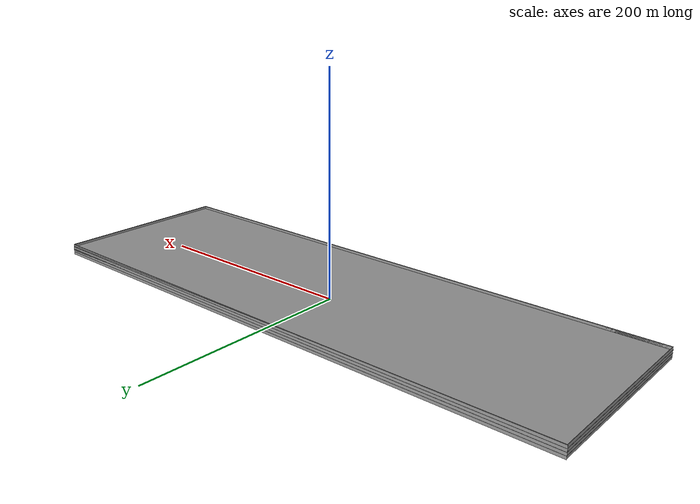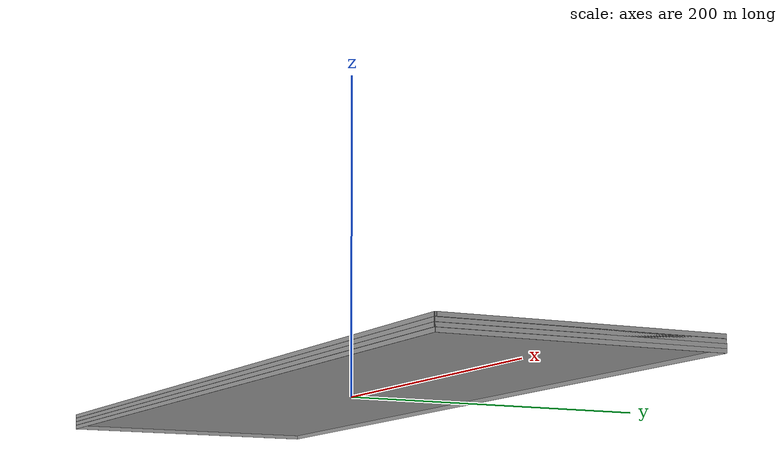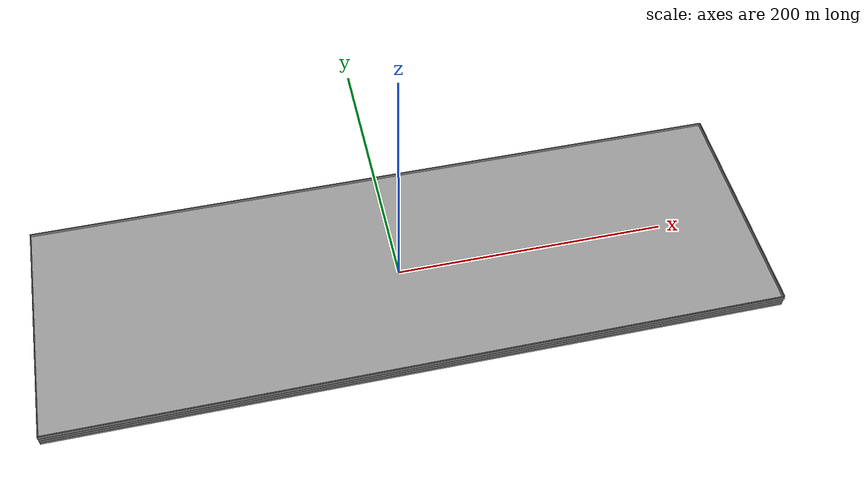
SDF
<?xml version='1.0'?>
<sdf version='1.6'>
  <model name='four_floor'>
    <pose frame=''>0.78746 -0.581123 0 0 -0 0</pose>
    <link name='Floor_0'>
      <collision name='Floor_0_Collision'>
        <geometry>
          <box>
            <size>524.25 169.5 0.1</size>
          </box>
        </geometry>
        <pose frame=''>0 0 0.05 0 -0 0</pose>
      </collision>
      <visual name='Floor_0_Visual'>
        <pose frame=''>0 0 0.05 0 -0 0</pose>
        <geometry>
          <box>
            <size>524.25 169.5 0.1</size>
          </box>
        </geometry>
        <material>
          <script>
            <uri>file://media/materials/scripts/gazebo.material</uri>
            <name>Gazebo/Grey</name>
          </script>
          <ambient>1 1 1 1</ambient>
        </material>
        <meta>
          <layer>1</layer>
        </meta>
      </visual>
      <pose frame=''>-0.250009 -2e-06 2.5 0 -0 0</pose>
    </link>
    <link name='Floor_1'>
      <collision name='Floor_1_Collision'>
        <geometry>
          <box>
            <size>524.25 169.5 0.1</size>
          </box>
        </geometry>
        <pose frame=''>0 0 0.05 0 -0 0</pose>
      </collision>
      <visual name='Floor_1_Visual'>
        <pose frame=''>0 0 0.05 0 -0 0</pose>
        <geometry>
          <box>
            <size>524.25 169.5 0.1</size>
          </box>
        </geometry>
        <material>
          <script>
            <uri>file://media/materials/scripts/gazebo.material</uri>
            <name>Gazebo/Grey</name>
          </script>
          <ambient>1 1 1 1</ambient>
        </material>
        <meta>
          <layer>2</layer>
        </meta>
      </visual>
      <pose frame=''>-0.250009 -2e-06 5 0 -0 0</pose>
    </link>
    <link name='Floor_2'>
      <collision name='Floor_2_Collision'>
        <geometry>
          <box>
            <size>524.75 169.5 0.1</size>
          </box>
        </geometry>
        <pose frame=''>0 0 0.05 0 -0 0</pose>
      </collision>
      <visual name='Floor_2_Visual'>
        <pose frame=''>0 0 0.05 0 -0 0</pose>
        <geometry>
          <box>
            <size>524.75 169.5 0.1</size>
          </box>
        </geometry>
        <material>
          <script>
            <uri>file://media/materials/scripts/gazebo.material</uri>
            <name>Gazebo/Grey</name>
          </script>
          <ambient>1 1 1 1</ambient>
        </material>
        <meta>
          <layer>3</layer>
        </meta>
      </visual>
      <pose frame=''>-9e-06 -2e-06 7.5 0 -0 0</pose>
    </link>
    <link name='Wall_0'>
      <collision name='Wall_0_Collision'>
        <geometry>
          <box>
            <size>524.25 0.15 2.5</size>
          </box>
        </geometry>
        <pose frame=''>0 0 1.25 0 -0 0</pose>
      </collision>
      <visual name='Wall_0_Visual'>
        <pose frame=''>0 0 1.25 0 -0 0</pose>
        <geometry>
          <box>
            <size>524.25 0.15 2.5</size>
          </box>
        </geometry>
        <material>
          <script>
            <uri>file://media/materials/scripts/gazebo.material</uri>
            <name>Gazebo/Grey</name>
          </script>
          <ambient>1 1 1 1</ambient>
        </material>
        <meta>
          <layer>0</layer>
        </meta>
      </visual>
      <pose frame=''>-0.250009 84.675 0 0 -0 0</pose>
    </link>
    <link name='Wall_1'>
      <collision name='Wall_1_Collision'>
        <geometry>
          <box>
            <size>169.25 0.15 2.5</size>
          </box>
        </geometry>
        <pose frame=''>0 0 1.25 0 -0 0</pose>
      </collision>
      <visual name='Wall_1_Visual'>
        <pose frame=''>0 0 1.25 0 -0 0</pose>
        <geometry>
          <box>
            <size>169.25 0.15 2.5</size>
          </box>
        </geometry>
        <material>
          <script>
            <uri>file://media/materials/scripts/gazebo.material</uri>
            <name>Gazebo/Grey</name>
          </script>
          <ambient>1 1 1 1</ambient>
        </material>
        <meta>
          <layer>0</layer>
        </meta>
      </visual>
      <pose frame=''>261.8 0.125016 0 0 -0 -1.5708</pose>
    </link>
    <link name='Wall_10'>
      <collision name='Wall_10_Collision'>
        <geometry>
          <box>
            <size>169.5 0.15 2.5</size>
          </box>
        </geometry>
        <pose frame=''>0 0 1.25 0 -0 0</pose>
      </collision>
      <visual name='Wall_10_Visual'>
        <pose frame=''>0 0 1.25 0 -0 0</pose>
        <geometry>
          <box>
            <size>169.5 0.15 2.5</size>
          </box>
        </geometry>
        <material>
          <script>
            <uri>file://media/materials/scripts/gazebo.material</uri>
            <name>Gazebo/Grey</name>
          </script>
          <ambient>1 1 1 1</ambient>
        </material>
        <meta>
          <layer>1</layer>
        </meta>
      </visual>
      <pose frame=''>261.375 1.6e-05 2.5 0 -0 -1.5708</pose>
    </link>
    <link name='Wall_11'>
      <collision name='Wall_11_Collision'>
        <geometry>
          <box>
            <size>523.576 0.15 2.5</size>
          </box>
        </geometry>
        <pose frame=''>0 0 1.25 0 -0 0</pose>
      </collision>
      <visual name='Wall_11_Visual'>
        <pose frame=''>0 0 1.25 0 -0 0</pose>
        <geometry>
          <box>
            <size>523.576 0.15 2.5</size>
          </box>
        </geometry>
        <material>
          <script>
            <uri>file://media/materials/scripts/gazebo.material</uri>
            <name>Gazebo/Grey</name>
          </script>
          <ambient>1 1 1 1</ambient>
        </material>
        <meta>
          <layer>1</layer>
        </meta>
      </visual>
      <pose frame=''>-0.337267 -84.55 2.5 0 -0 3.14112</pose>
    </link>
    <link name='Wall_12'>
      <collision name='Wall_12_Collision'>
        <geometry>
          <box>
            <size>169 0.15 2.5</size>
          </box>
        </geometry>
        <pose frame=''>0 0 1.25 0 -0 0</pose>
      </collision>
      <visual name='Wall_12_Visual'>
        <pose frame=''>0 0 1.25 0 -0 0</pose>
        <geometry>
          <box>
            <size>169 0.15 2.5</size>
          </box>
        </geometry>
        <material>
          <script>
            <uri>file://media/materials/scripts/gazebo.material</uri>
            <name>Gazebo/Grey</name>
          </script>
          <ambient>1 1 1 1</ambient>
        </material>
        <meta>
          <layer>1</layer>
        </meta>
      </visual>
      <pose frame=''>-262.05 1.6e-05 2.5 0 -0 1.5708</pose>
    </link>
    <link name='Wall_14'>
      <collision name='Wall_14_Collision'>
        <geometry>
          <box>
            <size>524.25 0.15 2.5</size>
          </box>
        </geometry>
        <pose frame=''>0 0 1.25 0 -0 0</pose>
      </collision>
      <visual name='Wall_14_Visual'>
        <pose frame=''>0 0 1.25 0 -0 0</pose>
        <geometry>
          <box>
            <size>524.25 0.15 2.5</size>
          </box>
        </geometry>
        <material>
          <script>
            <uri>file://media/materials/scripts/gazebo.material</uri>
            <name>Gazebo/Grey</name>
          </script>
          <ambient>1 1 1 1</ambient>
        </material>
        <meta>
          <layer>2</layer>
        </meta>
      </visual>
      <pose frame=''>-0.250009 84.675 5 0 -0 0</pose>
    </link>
    <link name='Wall_15'>
      <collision name='Wall_15_Collision'>
        <geometry>
          <box>
            <size>169.25 0.15 2.5</size>
          </box>
        </geometry>
        <pose frame=''>0 0 1.25 0 -0 0</pose>
      </collision>
      <visual name='Wall_15_Visual'>
        <pose frame=''>0 0 1.25 0 -0 0</pose>
        <geometry>
          <box>
            <size>169.25 0.15 2.5</size>
          </box>
        </geometry>
        <material>
          <script>
            <uri>file://media/materials/scripts/gazebo.material</uri>
            <name>Gazebo/Grey</name>
          </script>
          <ambient>1 1 1 1</ambient>
        </material>
        <meta>
          <layer>2</layer>
        </meta>
      </visual>
      <pose frame=''>261.8 0.125016 5 0 -0 -1.5708</pose>
    </link>
    <link name='Wall_16'>
      <collision name='Wall_16_Collision'>
        <geometry>
          <box>
            <size>524 0.15 2.5</size>
          </box>
        </geometry>
        <pose frame=''>0 0 1.25 0 -0 0</pose>
      </collision>
      <visual name='Wall_16_Visual'>
        <pose frame=''>0 0 1.25 0 -0 0</pose>
        <geometry>
          <box>
            <size>524 0.15 2.5</size>
          </box>
        </geometry>
        <material>
          <script>
            <uri>file://media/materials/scripts/gazebo.material</uri>
            <name>Gazebo/Grey</name>
          </script>
          <ambient>1 1 1 1</ambient>
        </material>
        <meta>
          <layer>2</layer>
        </meta>
      </visual>
      <pose frame=''>-0.125009 -84.425 5 0 -0 3.14159</pose>
    </link>
    <link name='Wall_17'>
      <collision name='Wall_17_Collision'>
        <geometry>
          <box>
            <size>169 0.15 2.5</size>
          </box>
        </geometry>
        <pose frame=''>0 0 1.25 0 -0 0</pose>
      </collision>
      <visual name='Wall_17_Visual'>
        <pose frame=''>0 0 1.25 0 -0 0</pose>
        <geometry>
          <box>
            <size>169 0.15 2.5</size>
          </box>
        </geometry>
        <material>
          <script>
            <uri>file://media/materials/scripts/gazebo.material</uri>
            <name>Gazebo/Grey</name>
          </script>
          <ambient>1 1 1 1</ambient>
        </material>
        <meta>
          <layer>2</layer>
        </meta>
      </visual>
      <pose frame=''>-262.05 1.6e-05 5 0 -0 1.5708</pose>
    </link>
    <link name='Wall_18'>
      <collision name='Wall_18_Collision'>
        <geometry>
          <box>
            <size>523.5 0.15 2.5</size>
          </box>
        </geometry>
        <pose frame=''>0 0 1.25 0 -0 0</pose>
      </collision>
      <visual name='Wall_18_Visual'>
        <pose frame=''>0 0 1.25 0 -0 0</pose>
        <geometry>
          <box>
            <size>523.5 0.15 2.5</size>
          </box>
        </geometry>
        <material>
          <script>
            <uri>file://media/materials/scripts/gazebo.material</uri>
            <name>Gazebo/Grey</name>
          </script>
          <ambient>1 1 1 1</ambient>
        </material>
        <meta>
          <layer>2</layer>
        </meta>
      </visual>
      <pose frame=''>-0.299526 84.675 5 0 -0 0</pose>
    </link>
    <link name='Wall_19'>
      <collision name='Wall_19_Collision'>
        <geometry>
          <box>
            <size>169.5 0.15 2.5</size>
          </box>
        </geometry>
        <pose frame=''>0 0 1.25 0 -0 0</pose>
      </collision>
      <visual name='Wall_19_Visual'>
        <pose frame=''>0 0 1.25 0 -0 0</pose>
        <geometry>
          <box>
            <size>169.5 0.15 2.5</size>
          </box>
        </geometry>
        <material>
          <script>
            <uri>file://media/materials/scripts/gazebo.material</uri>
            <name>Gazebo/Grey</name>
          </script>
          <ambient>1 1 1 1</ambient>
        </material>
        <meta>
          <layer>2</layer>
        </meta>
      </visual>
      <pose frame=''>261.375 1.6e-05 5 0 -0 -1.5708</pose>
    </link>
    <link name='Wall_2'>
      <collision name='Wall_2_Collision'>
        <geometry>
          <box>
            <size>524 0.15 2.5</size>
          </box>
        </geometry>
        <pose frame=''>0 0 1.25 0 -0 0</pose>
      </collision>
      <visual name='Wall_2_Visual'>
        <pose frame=''>0 0 1.25 0 -0 0</pose>
        <geometry>
          <box>
            <size>524 0.15 2.5</size>
          </box>
        </geometry>
        <material>
          <script>
            <uri>file://media/materials/scripts/gazebo.material</uri>
            <name>Gazebo/Grey</name>
          </script>
          <ambient>1 1 1 1</ambient>
        </material>
        <meta>
          <layer>0</layer>
        </meta>
      </visual>
      <pose frame=''>-0.125009 -84.425 0 0 -0 3.14159</pose>
    </link>
    <link name='Wall_20'>
      <collision name='Wall_20_Collision'>
        <geometry>
          <box>
            <size>523.576 0.15 2.5</size>
          </box>
        </geometry>
        <pose frame=''>0 0 1.25 0 -0 0</pose>
      </collision>
      <visual name='Wall_20_Visual'>
        <pose frame=''>0 0 1.25 0 -0 0</pose>
        <geometry>
          <box>
            <size>523.576 0.15 2.5</size>
          </box>
        </geometry>
        <material>
          <script>
            <uri>file://media/materials/scripts/gazebo.material</uri>
            <name>Gazebo/Grey</name>
          </script>
          <ambient>1 1 1 1</ambient>
        </material>
        <meta>
          <layer>2</layer>
        </meta>
      </visual>
      <pose frame=''>-0.337267 -84.55 5 0 -0 3.14112</pose>
    </link>
    <link name='Wall_21'>
      <collision name='Wall_21_Collision'>
        <geometry>
          <box>
            <size>169 0.15 2.5</size>
          </box>
        </geometry>
        <pose frame=''>0 0 1.25 0 -0 0</pose>
      </collision>
      <visual name='Wall_21_Visual'>
        <pose frame=''>0 0 1.25 0 -0 0</pose>
        <geometry>
          <box>
            <size>169 0.15 2.5</size>
          </box>
        </geometry>
        <material>
          <script>
            <uri>file://media/materials/scripts/gazebo.material</uri>
            <name>Gazebo/Grey</name>
          </script>
          <ambient>1 1 1 1</ambient>
        </material>
        <meta>
          <layer>2</layer>
        </meta>
      </visual>
      <pose frame=''>-262.05 1.6e-05 5 0 -0 1.5708</pose>
    </link>
    <link name='Wall_22'>
      <collision name='Wall_22_Collision'>
        <geometry>
          <box>
            <size>524 0.15 2.5</size>
          </box>
        </geometry>
        <pose frame=''>0 0 1.25 0 -0 0</pose>
      </collision>
      <visual name='Wall_22_Visual'>
        <pose frame=''>0 0 1.25 0 -0 0</pose>
        <geometry>
          <box>
            <size>524 0.15 2.5</size>
          </box>
        </geometry>
        <material>
          <script>
            <uri>file://media/materials/scripts/gazebo.material</uri>
            <name>Gazebo/Grey</name>
          </script>
          <ambient>1 1 1 1</ambient>
        </material>
        <meta>
          <layer>2</layer>
        </meta>
      </visual>
      <pose frame=''>-0.125009 84.425 5 0 -0 0</pose>
    </link>
    <link name='Wall_23'>
      <collision name='Wall_23_Collision'>
        <geometry>
          <box>
            <size>168.25 0.15 2.5</size>
          </box>
        </geometry>
        <pose frame=''>0 0 1.25 0 -0 0</pose>
      </collision>
      <visual name='Wall_23_Visual'>
        <pose frame=''>0 0 1.25 0 -0 0</pose>
        <geometry>
          <box>
            <size>168.25 0.15 2.5</size>
          </box>
        </geometry>
        <material>
          <script>
            <uri>file://media/materials/scripts/gazebo.material</uri>
            <name>Gazebo/Grey</name>
          </script>
          <ambient>1 1 1 1</ambient>
        </material>
        <meta>
          <layer>2</layer>
        </meta>
      </visual>
      <pose frame=''>261.8 0.375016 5 0 -0 -1.5708</pose>
    </link>
    <link name='Wall_24'>
      <collision name='Wall_24_Collision'>
        <geometry>
          <box>
            <size>523.75 0.15 2.5</size>
          </box>
        </geometry>
        <pose frame=''>0 0 1.25 0 -0 0</pose>
      </collision>
      <visual name='Wall_24_Visual'>
        <pose frame=''>0 0 1.25 0 -0 0</pose>
        <geometry>
          <box>
            <size>523.75 0.15 2.5</size>
          </box>
        </geometry>
        <material>
          <script>
            <uri>file://media/materials/scripts/gazebo.material</uri>
            <name>Gazebo/Grey</name>
          </script>
          <ambient>1 1 1 1</ambient>
        </material>
        <meta>
          <layer>2</layer>
        </meta>
      </visual>
      <pose frame=''>-9e-06 -83.675 5 0 -0 3.14159</pose>
    </link>
    <link name='Wall_25'>
      <collision name='Wall_25_Collision'>
        <geometry>
          <box>
            <size>168 0.15 2.5</size>
          </box>
        </geometry>
        <pose frame=''>0 0 1.25 0 -0 0</pose>
      </collision>
      <visual name='Wall_25_Visual'>
        <pose frame=''>0 0 1.25 0 -0 0</pose>
        <geometry>
          <box>
            <size>168 0.15 2.5</size>
          </box>
        </geometry>
        <material>
          <script>
            <uri>file://media/materials/scripts/gazebo.material</uri>
            <name>Gazebo/Grey</name>
          </script>
          <ambient>1 1 1 1</ambient>
        </material>
        <meta>
          <layer>2</layer>
        </meta>
      </visual>
      <pose frame=''>-261.8 0.250016 5 0 -0 1.5708</pose>
    </link>
    <link name='Wall_27'>
      <collision name='Wall_27_Collision'>
        <geometry>
          <box>
            <size>524.25 0.15 2.5</size>
          </box>
        </geometry>
        <pose frame=''>0 0 1.25 0 -0 0</pose>
      </collision>
      <visual name='Wall_27_Visual'>
        <pose frame=''>0 0 1.25 0 -0 0</pose>
        <geometry>
          <box>
            <size>524.25 0.15 2.5</size>
          </box>
        </geometry>
        <material>
          <script>
            <uri>file://media/materials/scripts/gazebo.material</uri>
            <name>Gazebo/Grey</name>
          </script>
          <ambient>1 1 1 1</ambient>
        </material>
        <meta>
          <layer>3</layer>
        </meta>
      </visual>
      <pose frame=''>-0.250009 84.675 7.5 0 -0 0</pose>
    </link>
    <link name='Wall_28'>
      <collision name='Wall_28_Collision'>
        <geometry>
          <box>
            <size>169.25 0.15 2.5</size>
          </box>
        </geometry>
        <pose frame=''>0 0 1.25 0 -0 0</pose>
      </collision>
      <visual name='Wall_28_Visual'>
        <pose frame=''>0 0 1.25 0 -0 0</pose>
        <geometry>
          <box>
            <size>169.25 0.15 2.5</size>
          </box>
        </geometry>
        <material>
          <script>
            <uri>file://media/materials/scripts/gazebo.material</uri>
            <name>Gazebo/Grey</name>
          </script>
          <ambient>1 1 1 1</ambient>
        </material>
        <meta>
          <layer>3</layer>
        </meta>
      </visual>
      <pose frame=''>261.8 0.125016 7.5 0 -0 -1.5708</pose>
    </link>
    <link name='Wall_29'>
      <collision name='Wall_29_Collision'>
        <geometry>
          <box>
            <size>524 0.15 2.5</size>
          </box>
        </geometry>
        <pose frame=''>0 0 1.25 0 -0 0</pose>
      </collision>
      <visual name='Wall_29_Visual'>
        <pose frame=''>0 0 1.25 0 -0 0</pose>
        <geometry>
          <box>
            <size>524 0.15 2.5</size>
          </box>
        </geometry>
        <material>
          <script>
            <uri>file://media/materials/scripts/gazebo.material</uri>
            <name>Gazebo/Grey</name>
          </script>
          <ambient>1 1 1 1</ambient>
        </material>
        <meta>
          <layer>3</layer>
        </meta>
      </visual>
      <pose frame=''>-0.125009 -84.425 7.5 0 -0 3.14159</pose>
    </link>
    <link name='Wall_3'>
      <collision name='Wall_3_Collision'>
        <geometry>
          <box>
            <size>169 0.15 2.5</size>
          </box>
        </geometry>
        <pose frame=''>0 0 1.25 0 -0 0</pose>
      </collision>
      <visual name='Wall_3_Visual'>
        <pose frame=''>0 0 1.25 0 -0 0</pose>
        <geometry>
          <box>
            <size>169 0.15 2.5</size>
          </box>
        </geometry>
        <material>
          <script>
            <uri>file://media/materials/scripts/gazebo.material</uri>
            <name>Gazebo/Grey</name>
          </script>
          <ambient>1 1 1 1</ambient>
        </material>
        <meta>
          <layer>0</layer>
        </meta>
      </visual>
      <pose frame=''>-262.05 1.6e-05 0 0 -0 1.5708</pose>
    </link>
    <link name='Wall_30'>
      <collision name='Wall_30_Collision'>
        <geometry>
          <box>
            <size>169 0.15 2.5</size>
          </box>
        </geometry>
        <pose frame=''>0 0 1.25 0 -0 0</pose>
      </collision>
      <visual name='Wall_30_Visual'>
        <pose frame=''>0 0 1.25 0 -0 0</pose>
        <geometry>
          <box>
            <size>169 0.15 2.5</size>
          </box>
        </geometry>
        <material>
          <script>
            <uri>file://media/materials/scripts/gazebo.material</uri>
            <name>Gazebo/Grey</name>
          </script>
          <ambient>1 1 1 1</ambient>
        </material>
        <meta>
          <layer>3</layer>
        </meta>
      </visual>
      <pose frame=''>-262.05 1.6e-05 7.5 0 -0 1.5708</pose>
    </link>
    <link name='Wall_31'>
      <collision name='Wall_31_Collision'>
        <geometry>
          <box>
            <size>523.5 0.15 2.5</size>
          </box>
        </geometry>
        <pose frame=''>0 0 1.25 0 -0 0</pose>
      </collision>
      <visual name='Wall_31_Visual'>
        <pose frame=''>0 0 1.25 0 -0 0</pose>
        <geometry>
          <box>
            <size>523.5 0.15 2.5</size>
          </box>
        </geometry>
        <material>
          <script>
            <uri>file://media/materials/scripts/gazebo.material</uri>
            <name>Gazebo/Grey</name>
          </script>
          <ambient>1 1 1 1</ambient>
        </material>
        <meta>
          <layer>3</layer>
        </meta>
      </visual>
      <pose frame=''>-0.299526 84.675 7.5 0 -0 0</pose>
    </link>
    <link name='Wall_32'>
      <collision name='Wall_32_Collision'>
        <geometry>
          <box>
            <size>169.5 0.15 2.5</size>
          </box>
        </geometry>
        <pose frame=''>0 0 1.25 0 -0 0</pose>
      </collision>
      <visual name='Wall_32_Visual'>
        <pose frame=''>0 0 1.25 0 -0 0</pose>
        <geometry>
          <box>
            <size>169.5 0.15 2.5</size>
          </box>
        </geometry>
        <material>
          <script>
            <uri>file://media/materials/scripts/gazebo.material</uri>
            <name>Gazebo/Grey</name>
          </script>
          <ambient>1 1 1 1</ambient>
        </material>
        <meta>
          <layer>3</layer>
        </meta>
      </visual>
      <pose frame=''>261.375 1.6e-05 7.5 0 -0 -1.5708</pose>
    </link>
    <link name='Wall_33'>
      <collision name='Wall_33_Collision'>
        <geometry>
          <box>
            <size>523.576 0.15 2.5</size>
          </box>
        </geometry>
        <pose frame=''>0 0 1.25 0 -0 0</pose>
      </collision>
      <visual name='Wall_33_Visual'>
        <pose frame=''>0 0 1.25 0 -0 0</pose>
        <geometry>
          <box>
            <size>523.576 0.15 2.5</size>
          </box>
        </geometry>
        <material>
          <script>
            <uri>file://media/materials/scripts/gazebo.material</uri>
            <name>Gazebo/Grey</name>
          </script>
          <ambient>1 1 1 1</ambient>
        </material>
        <meta>
          <layer>3</layer>
        </meta>
      </visual>
      <pose frame=''>-0.337267 -84.55 7.5 0 -0 3.14112</pose>
    </link>
    <link name='Wall_34'>
      <collision name='Wall_34_Collision'>
        <geometry>
          <box>
            <size>169 0.15 2.5</size>
          </box>
        </geometry>
        <pose frame=''>0 0 1.25 0 -0 0</pose>
      </collision>
      <visual name='Wall_34_Visual'>
        <pose frame=''>0 0 1.25 0 -0 0</pose>
        <geometry>
          <box>
            <size>169 0.15 2.5</size>
          </box>
        </geometry>
        <material>
          <script>
            <uri>file://media/materials/scripts/gazebo.material</uri>
            <name>Gazebo/Grey</name>
          </script>
          <ambient>1 1 1 1</ambient>
        </material>
        <meta>
          <layer>3</layer>
        </meta>
      </visual>
      <pose frame=''>-262.05 1.6e-05 7.5 0 -0 1.5708</pose>
    </link>
    <link name='Wall_35'>
      <collision name='Wall_35_Collision'>
        <geometry>
          <box>
            <size>524 0.15 2.5</size>
          </box>
        </geometry>
        <pose frame=''>0 0 1.25 0 -0 0</pose>
      </collision>
      <visual name='Wall_35_Visual'>
        <pose frame=''>0 0 1.25 0 -0 0</pose>
        <geometry>
          <box>
            <size>524 0.15 2.5</size>
          </box>
        </geometry>
        <material>
          <script>
            <uri>file://media/materials/scripts/gazebo.material</uri>
            <name>Gazebo/Grey</name>
          </script>
          <ambient>1 1 1 1</ambient>
        </material>
        <meta>
          <layer>3</layer>
        </meta>
      </visual>
      <pose frame=''>-0.125009 84.425 7.5 0 -0 0</pose>
    </link>
    <link name='Wall_36'>
      <collision name='Wall_36_Collision'>
        <geometry>
          <box>
            <size>168.25 0.15 2.5</size>
          </box>
        </geometry>
        <pose frame=''>0 0 1.25 0 -0 0</pose>
      </collision>
      <visual name='Wall_36_Visual'>
        <pose frame=''>0 0 1.25 0 -0 0</pose>
        <geometry>
          <box>
            <size>168.25 0.15 2.5</size>
          </box>
        </geometry>
        <material>
          <script>
            <uri>file://media/materials/scripts/gazebo.material</uri>
            <name>Gazebo/Grey</name>
          </script>
          <ambient>1 1 1 1</ambient>
        </material>
        <meta>
          <layer>3</layer>
        </meta>
      </visual>
      <pose frame=''>261.8 0.375016 7.5 0 -0 -1.5708</pose>
    </link>
    <link name='Wall_37'>
      <collision name='Wall_37_Collision'>
        <geometry>
          <box>
            <size>523.75 0.15 2.5</size>
          </box>
        </geometry>
        <pose frame=''>0 0 1.25 0 -0 0</pose>
      </collision>
      <visual name='Wall_37_Visual'>
        <pose frame=''>0 0 1.25 0 -0 0</pose>
        <geometry>
          <box>
            <size>523.75 0.15 2.5</size>
          </box>
        </geometry>
        <material>
          <script>
            <uri>file://media/materials/scripts/gazebo.material</uri>
            <name>Gazebo/Grey</name>
          </script>
          <ambient>1 1 1 1</ambient>
        </material>
        <meta>
          <layer>3</layer>
        </meta>
      </visual>
      <pose frame=''>-9e-06 -83.675 7.5 0 -0 3.14159</pose>
    </link>
    <link name='Wall_38'>
      <collision name='Wall_38_Collision'>
        <geometry>
          <box>
            <size>168 0.15 2.5</size>
          </box>
        </geometry>
        <pose frame=''>0 0 1.25 0 -0 0</pose>
      </collision>
      <visual name='Wall_38_Visual'>
        <pose frame=''>0 0 1.25 0 -0 0</pose>
        <geometry>
          <box>
            <size>168 0.15 2.5</size>
          </box>
        </geometry>
        <material>
          <script>
            <uri>file://media/materials/scripts/gazebo.material</uri>
            <name>Gazebo/Grey</name>
          </script>
          <ambient>1 1 1 1</ambient>
        </material>
        <meta>
          <layer>3</layer>
        </meta>
      </visual>
      <pose frame=''>-261.8 0.250016 7.5 0 -0 1.5708</pose>
    </link>
    <link name='Wall_39'>
      <collision name='Wall_39_Collision'>
        <geometry>
          <box>
            <size>524.25 0.15 2.5</size>
          </box>
        </geometry>
        <pose frame=''>0 0 1.25 0 -0 0</pose>
      </collision>
      <visual name='Wall_39_Visual'>
        <pose frame=''>0 0 1.25 0 -0 0</pose>
        <geometry>
          <box>
            <size>524.25 0.15 2.5</size>
          </box>
        </geometry>
        <material>
          <script>
            <uri>file://media/materials/scripts/gazebo.material</uri>
            <name>Gazebo/Grey</name>
          </script>
          <ambient>1 1 1 1</ambient>
        </material>
        <meta>
          <layer>3</layer>
        </meta>
      </visual>
      <pose frame=''>0.249991 84.175 7.5 0 -0 0</pose>
    </link>
    <link name='Wall_40'>
      <collision name='Wall_40_Collision'>
        <geometry>
          <box>
            <size>168 0.15 2.5</size>
          </box>
        </geometry>
        <pose frame=''>0 0 1.25 0 -0 0</pose>
      </collision>
      <visual name='Wall_40_Visual'>
        <pose frame=''>0 0 1.25 0 -0 0</pose>
        <geometry>
          <box>
            <size>168 0.15 2.5</size>
          </box>
        </geometry>
        <material>
          <script>
            <uri>file://media/materials/scripts/gazebo.material</uri>
            <name>Gazebo/Grey</name>
          </script>
          <ambient>1 1 1 1</ambient>
        </material>
        <meta>
          <layer>3</layer>
        </meta>
      </visual>
      <pose frame=''>262.3 0.250016 7.5 0 -0 -1.5708</pose>
    </link>
    <link name='Wall_41'>
      <collision name='Wall_41_Collision'>
        <geometry>
          <box>
            <size>524.25 0.15 2.5</size>
          </box>
        </geometry>
        <pose frame=''>0 0 1.25 0 -0 0</pose>
      </collision>
      <visual name='Wall_41_Visual'>
        <pose frame=''>0 0 1.25 0 -0 0</pose>
        <geometry>
          <box>
            <size>524.25 0.15 2.5</size>
          </box>
        </geometry>
        <material>
          <script>
            <uri>file://media/materials/scripts/gazebo.material</uri>
            <name>Gazebo/Grey</name>
          </script>
          <ambient>1 1 1 1</ambient>
        </material>
        <meta>
          <layer>3</layer>
        </meta>
      </visual>
      <pose frame=''>0.249991 -83.675 7.5 0 -0 3.14159</pose>
    </link>
    <link name='Wall_42'>
      <collision name='Wall_42_Collision'>
        <geometry>
          <box>
            <size>168 0.15 2.5</size>
          </box>
        </geometry>
        <pose frame=''>0 0 1.25 0 -0 0</pose>
      </collision>
      <visual name='Wall_42_Visual'>
        <pose frame=''>0 0 1.25 0 -0 0</pose>
        <geometry>
          <box>
            <size>168 0.15 2.5</size>
          </box>
        </geometry>
        <material>
          <script>
            <uri>file://media/materials/scripts/gazebo.material</uri>
            <name>Gazebo/Grey</name>
          </script>
          <ambient>1 1 1 1</ambient>
        </material>
        <meta>
          <layer>3</layer>
        </meta>
      </visual>
      <pose frame=''>-261.8 0.250016 7.5 0 -0 1.5708</pose>
    </link>
    <link name='Wall_5'>
      <collision name='Wall_5_Collision'>
        <geometry>
          <box>
            <size>524.25 0.15 2.5</size>
          </box>
        </geometry>
        <pose frame=''>0 0 1.25 0 -0 0</pose>
      </collision>
      <visual name='Wall_5_Visual'>
        <pose frame=''>0 0 1.25 0 -0 0</pose>
        <geometry>
          <box>
            <size>524.25 0.15 2.5</size>
          </box>
        </geometry>
        <material>
          <script>
            <uri>file://media/materials/scripts/gazebo.material</uri>
            <name>Gazebo/Grey</name>
          </script>
          <ambient>1 1 1 1</ambient>
        </material>
        <meta>
          <layer>1</layer>
        </meta>
      </visual>
      <pose frame=''>-0.250009 84.675 2.5 0 -0 0</pose>
    </link>
    <link name='Wall_6'>
      <collision name='Wall_6_Collision'>
        <geometry>
          <box>
            <size>169.25 0.15 2.5</size>
          </box>
        </geometry>
        <pose frame=''>0 0 1.25 0 -0 0</pose>
      </collision>
      <visual name='Wall_6_Visual'>
        <pose frame=''>0 0 1.25 0 -0 0</pose>
        <geometry>
          <box>
            <size>169.25 0.15 2.5</size>
          </box>
        </geometry>
        <material>
          <script>
            <uri>file://media/materials/scripts/gazebo.material</uri>
            <name>Gazebo/Grey</name>
          </script>
          <ambient>1 1 1 1</ambient>
        </material>
        <meta>
          <layer>1</layer>
        </meta>
      </visual>
      <pose frame=''>261.8 0.125016 2.5 0 -0 -1.5708</pose>
    </link>
    <link name='Wall_7'>
      <collision name='Wall_7_Collision'>
        <geometry>
          <box>
            <size>524 0.15 2.5</size>
          </box>
        </geometry>
        <pose frame=''>0 0 1.25 0 -0 0</pose>
      </collision>
      <visual name='Wall_7_Visual'>
        <pose frame=''>0 0 1.25 0 -0 0</pose>
        <geometry>
          <box>
            <size>524 0.15 2.5</size>
          </box>
        </geometry>
        <material>
          <script>
            <uri>file://media/materials/scripts/gazebo.material</uri>
            <name>Gazebo/Grey</name>
          </script>
          <ambient>1 1 1 1</ambient>
        </material>
        <meta>
          <layer>1</layer>
        </meta>
      </visual>
      <pose frame=''>-0.125009 -84.425 2.5 0 -0 3.14159</pose>
    </link>
    <link name='Wall_8'>
      <collision name='Wall_8_Collision'>
        <geometry>
          <box>
            <size>169 0.15 2.5</size>
          </box>
        </geometry>
        <pose frame=''>0 0 1.25 0 -0 0</pose>
      </collision>
      <visual name='Wall_8_Visual'>
        <pose frame=''>0 0 1.25 0 -0 0</pose>
        <geometry>
          <box>
            <size>169 0.15 2.5</size>
          </box>
        </geometry>
        <material>
          <script>
            <uri>file://media/materials/scripts/gazebo.material</uri>
            <name>Gazebo/Grey</name>
          </script>
          <ambient>1 1 1 1</ambient>
        </material>
        <meta>
          <layer>1</layer>
        </meta>
      </visual>
      <pose frame=''>-262.05 1.6e-05 2.5 0 -0 1.5708</pose>
    </link>
    <link name='Wall_9'>
      <collision name='Wall_9_Collision'>
        <geometry>
          <box>
            <size>523.5 0.15 2.5</size>
          </box>
        </geometry>
        <pose frame=''>0 0 1.25 0 -0 0</pose>
      </collision>
      <visual name='Wall_9_Visual'>
        <pose frame=''>0 0 1.25 0 -0 0</pose>
        <geometry>
          <box>
            <size>523.5 0.15 2.5</size>
          </box>
        </geometry>
        <material>
          <script>
            <uri>file://media/materials/scripts/gazebo.material</uri>
            <name>Gazebo/Grey</name>
          </script>
          <ambient>1 1 1 1</ambient>
        </material>
        <meta>
          <layer>1</layer>
        </meta>
      </visual>
      <pose frame=''>-0.299526 84.675 2.5 0 -0 0</pose>
    </link>
    <static>1</static>
  </model>
</sdf>
